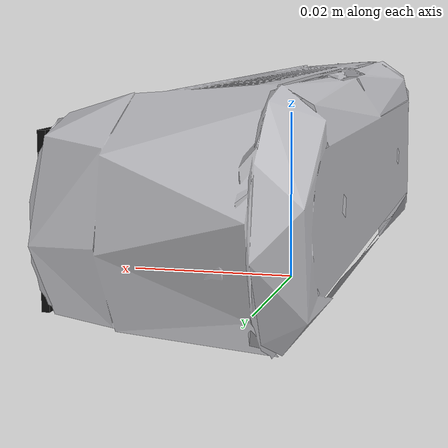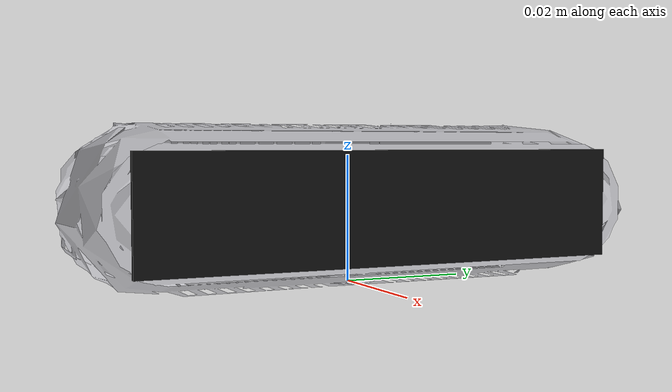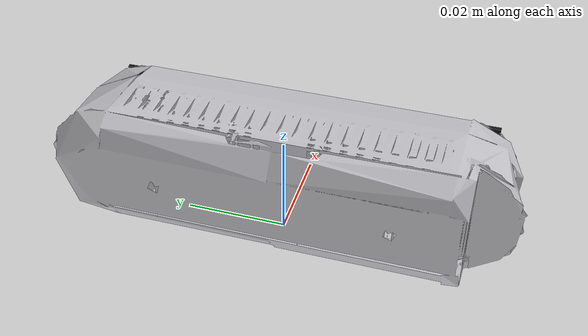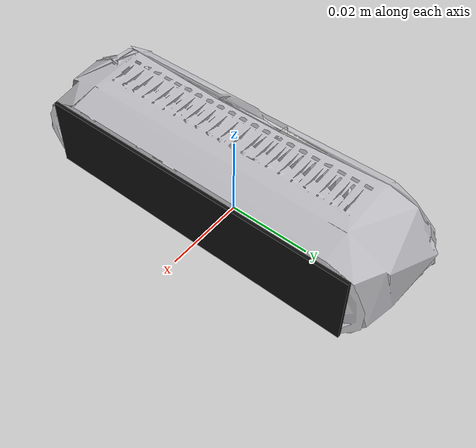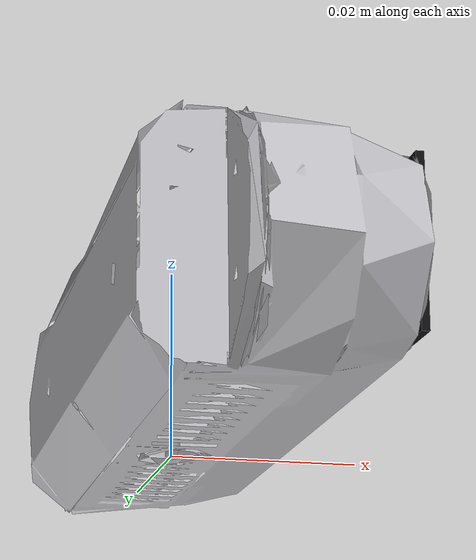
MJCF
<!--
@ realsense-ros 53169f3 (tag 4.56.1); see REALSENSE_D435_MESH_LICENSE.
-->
<mujoco model="realsense_d435">
  <compiler angle="radian" meshdir="meshes" autolimits="true"/>

  <asset>
    <mesh name="d435_mesh" file="d435.obj"/>
    <material name="d435_body" rgba="0.75 0.75 0.77 1" specular="0.4" shininess="0.3"/>
    <material name="d435_glass" rgba="0.05 0.05 0.05 1" specular="0.6" shininess="0.6"/>
  </asset>

  <worldbody>
    <body name="mount">
      <body name="link" pos="0.0106 0.0175 0.0125">
        <!-- The data sheet's weight, as a uniform box of the collision geom's size. -->
        <inertial pos="-0.00855 -0.0175 0" quat="0.5 0.5 0.5 0.5"
                  mass="0.072"
                  diaginertia="8.1129408e-06 5.33498208e-05 5.35245408e-05"/>
        <geom name="d435_visual" type="mesh" mesh="d435_mesh" material="d435_body"
              pos="0.0043 -0.0175 0" quat="0.5 0.5 0.5 0.5" contype="0" conaffinity="0"/>
        <!-- Front glass strip: the decimated mesh has no separate material for the front window,
             so a thin black plate stands in, just proud of the mesh's front face. -->
        <geom name="d435_front" type="box" pos="0.0047 -0.0175 0" quat="0.5 0.5 0.5 0.5"
              size="0.038 0.0085 0.0004" material="d435_glass" contype="0" conaffinity="0"/>
        <geom name="d435_collision" type="box" pos="-0.00855 -0.0175 0"
              quat="0.5 0.5 0.5 0.5" size="0.04536 0.01314 0.01286" group="3"/>
        <camera name="d435_color" pos="0 0.015 0" xyaxes="0 -1 0 0 0 1"
                fovy="42.5" resolution="640 480"/>
        <camera name="d435_depth" pos="0 0 0" xyaxes="0 -1 0 0 0 1"
                fovy="58" resolution="848 480"/>
      </body>
    </body>
  </worldbody>
</mujoco>
